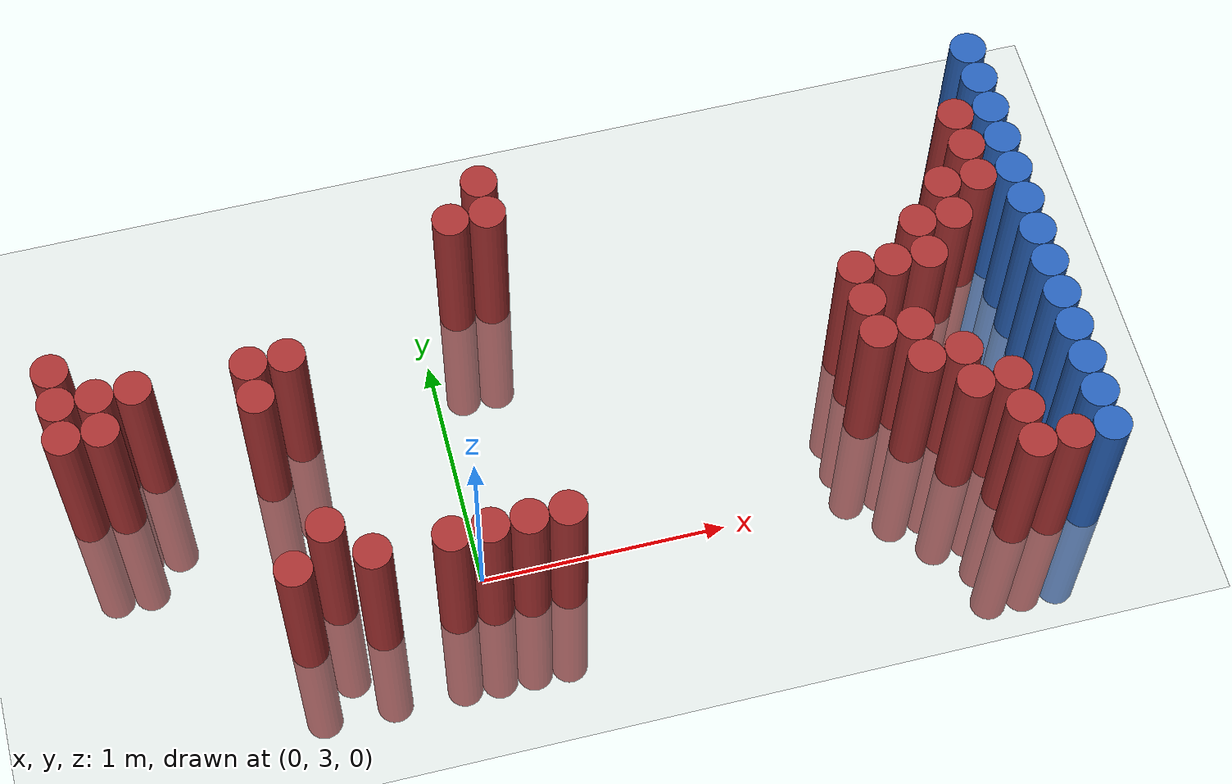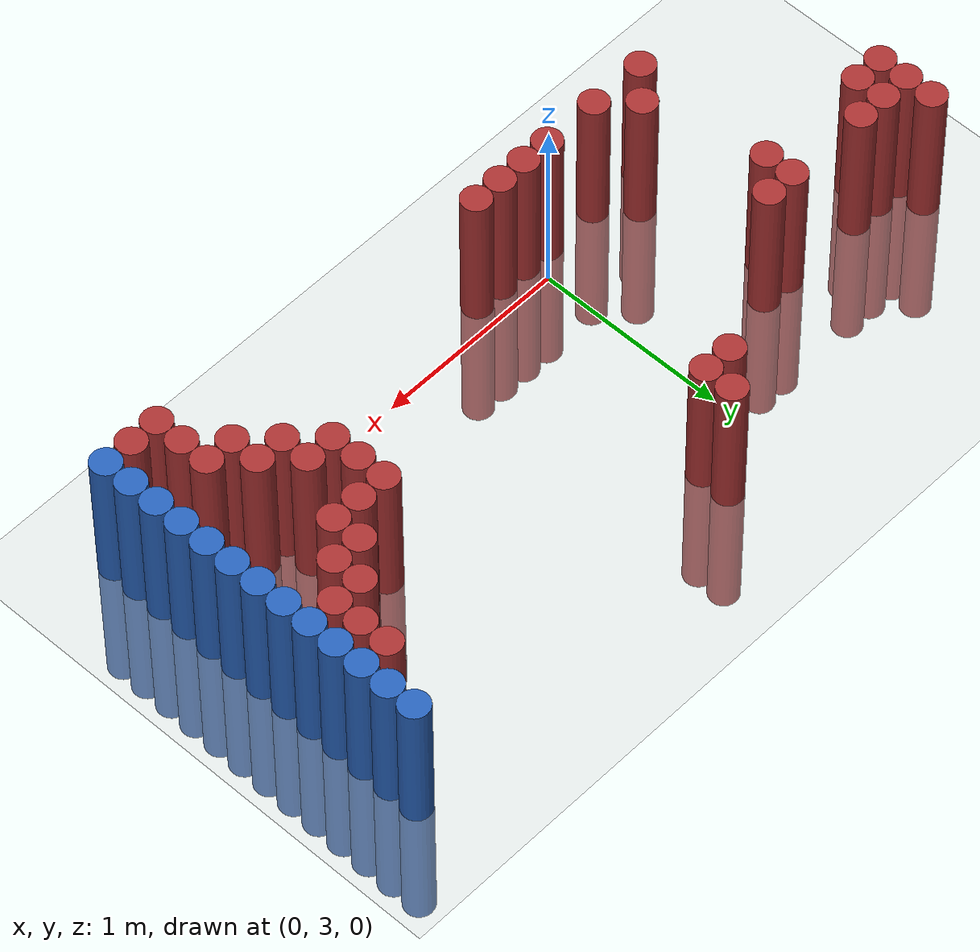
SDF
<sdf version="1.6">
 <world name="default">
  <model name="ground_plane">
   <static>1</static>
   <link name="link">
    <collision name="collision">
     <geometry><plane><normal>0 0 1</normal><size>100 100</size></plane></geometry>
     <surface><friction><ode><mu>100</mu><mu2>50</mu2></ode></friction></surface>
    </collision>
    <visual name="visual">
     <cast_shadows>0</cast_shadows>
     <geometry><plane><normal>0 0 1</normal><size>100 100</size></plane></geometry>
     <material>
      <script><uri>file://media/materials/scripts/gazebo.material</uri><name>Gazebo/Grey</name></script>
     </material>
    </visual>
   </link>
  </model>
  <model name="unit_cylinder_152">
   <static>1</static>
   <pose>-1.475000 3.625000 0.000000 0.000000 0.000000 0.000000</pose>
   <link name="link">
    <inertial>
     <mass>1</mass>
     <inertia><ixx>0.145833</ixx><ixy>0</ixy><ixz>0</ixz><iyy>0.145833</iyy><iyz>0</iyz><izz>0.125</izz></inertia>
    </inertial>
    <collision name="collision">
     <geometry><cylinder><radius>0.075000</radius><length>1.5</length></cylinder></geometry>
    </collision>
    <visual name="visual">
     <geometry><cylinder><radius>0.075000</radius><length>1.5</length></cylinder></geometry>
     <material>
      <ambient>0.648000 0.192000 0.192000 1</ambient>
      <diffuse>0.648000 0.192000 0.192000 1</diffuse>
     </material>
     <material>
      <script><name>Gazebo/Grey</name><uri>file://media/materials/scripts/gazebo.material</uri></script>
     </material>
    </visual>
   </link>
  </model>
  <model name="unit_cylinder_153">
   <static>1</static>
   <pose>-1.475000 3.775000 0.000000 0.000000 0.000000 0.000000</pose>
   <link name="link">
    <inertial>
     <mass>1</mass>
     <inertia><ixx>0.145833</ixx><ixy>0</ixy><ixz>0</ixz><iyy>0.145833</iyy><iyz>0</iyz><izz>0.125</izz></inertia>
    </inertial>
    <collision name="collision">
     <geometry><cylinder><radius>0.075000</radius><length>1.5</length></cylinder></geometry>
    </collision>
    <visual name="visual">
     <geometry><cylinder><radius>0.075000</radius><length>1.5</length></cylinder></geometry>
     <material>
      <ambient>0.648000 0.192000 0.192000 1</ambient>
      <diffuse>0.648000 0.192000 0.192000 1</diffuse>
     </material>
     <material>
      <script><name>Gazebo/Grey</name><uri>file://media/materials/scripts/gazebo.material</uri></script>
     </material>
    </visual>
   </link>
  </model>
  <model name="unit_cylinder_154">
   <static>1</static>
   <pose>-1.475000 3.925000 0.000000 0.000000 0.000000 0.000000</pose>
   <link name="link">
    <inertial>
     <mass>1</mass>
     <inertia><ixx>0.145833</ixx><ixy>0</ixy><ixz>0</ixz><iyy>0.145833</iyy><iyz>0</iyz><izz>0.125</izz></inertia>
    </inertial>
    <collision name="collision">
     <geometry><cylinder><radius>0.075000</radius><length>1.5</length></cylinder></geometry>
    </collision>
    <visual name="visual">
     <geometry><cylinder><radius>0.075000</radius><length>1.5</length></cylinder></geometry>
     <material>
      <ambient>0.648000 0.192000 0.192000 1</ambient>
      <diffuse>0.648000 0.192000 0.192000 1</diffuse>
     </material>
     <material>
      <script><name>Gazebo/Grey</name><uri>file://media/materials/scripts/gazebo.material</uri></script>
     </material>
    </visual>
   </link>
  </model>
  <model name="unit_cylinder_157">
   <static>1</static>
   <pose>-1.325000 3.625000 0.000000 0.000000 0.000000 0.000000</pose>
   <link name="link">
    <inertial>
     <mass>1</mass>
     <inertia><ixx>0.145833</ixx><ixy>0</ixy><ixz>0</ixz><iyy>0.145833</iyy><iyz>0</iyz><izz>0.125</izz></inertia>
    </inertial>
    <collision name="collision">
     <geometry><cylinder><radius>0.075000</radius><length>1.5</length></cylinder></geometry>
    </collision>
    <visual name="visual">
     <geometry><cylinder><radius>0.075000</radius><length>1.5</length></cylinder></geometry>
     <material>
      <ambient>0.648000 0.192000 0.192000 1</ambient>
      <diffuse>0.648000 0.192000 0.192000 1</diffuse>
     </material>
     <material>
      <script><name>Gazebo/Grey</name><uri>file://media/materials/scripts/gazebo.material</uri></script>
     </material>
    </visual>
   </link>
  </model>
  <model name="unit_cylinder_158">
   <static>1</static>
   <pose>-1.325000 3.775000 0.000000 0.000000 0.000000 0.000000</pose>
   <link name="link">
    <inertial>
     <mass>1</mass>
     <inertia><ixx>0.145833</ixx><ixy>0</ixy><ixz>0</ixz><iyy>0.145833</iyy><iyz>0</iyz><izz>0.125</izz></inertia>
    </inertial>
    <collision name="collision">
     <geometry><cylinder><radius>0.075000</radius><length>1.5</length></cylinder></geometry>
    </collision>
    <visual name="visual">
     <geometry><cylinder><radius>0.075000</radius><length>1.5</length></cylinder></geometry>
     <material>
      <ambient>0.648000 0.192000 0.192000 1</ambient>
      <diffuse>0.648000 0.192000 0.192000 1</diffuse>
     </material>
     <material>
      <script><name>Gazebo/Grey</name><uri>file://media/materials/scripts/gazebo.material</uri></script>
     </material>
    </visual>
   </link>
  </model>
  <model name="unit_cylinder_164">
   <static>1</static>
   <pose>-1.175000 3.775000 0.000000 0.000000 0.000000 0.000000</pose>
   <link name="link">
    <inertial>
     <mass>1</mass>
     <inertia><ixx>0.145833</ixx><ixy>0</ixy><ixz>0</ixz><iyy>0.145833</iyy><iyz>0</iyz><izz>0.125</izz></inertia>
    </inertial>
    <collision name="collision">
     <geometry><cylinder><radius>0.075000</radius><length>1.5</length></cylinder></geometry>
    </collision>
    <visual name="visual">
     <geometry><cylinder><radius>0.075000</radius><length>1.5</length></cylinder></geometry>
     <material>
      <ambient>0.648000 0.192000 0.192000 1</ambient>
      <diffuse>0.648000 0.192000 0.192000 1</diffuse>
     </material>
     <material>
      <script><name>Gazebo/Grey</name><uri>file://media/materials/scripts/gazebo.material</uri></script>
     </material>
    </visual>
   </link>
  </model>
  <model name="unit_cylinder_172">
   <static>1</static>
   <pose>-0.725000 2.875000 0.000000 0.000000 0.000000 0.000000</pose>
   <link name="link">
    <inertial>
     <mass>1</mass>
     <inertia><ixx>0.145833</ixx><ixy>0</ixy><ixz>0</ixz><iyy>0.145833</iyy><iyz>0</iyz><izz>0.125</izz></inertia>
    </inertial>
    <collision name="collision">
     <geometry><cylinder><radius>0.075000</radius><length>1.5</length></cylinder></geometry>
    </collision>
    <visual name="visual">
     <geometry><cylinder><radius>0.075000</radius><length>1.5</length></cylinder></geometry>
     <material>
      <ambient>0.648000 0.192000 0.192000 1</ambient>
      <diffuse>0.648000 0.192000 0.192000 1</diffuse>
     </material>
     <material>
      <script><name>Gazebo/Grey</name><uri>file://media/materials/scripts/gazebo.material</uri></script>
     </material>
    </visual>
   </link>
  </model>
  <model name="unit_cylinder_173">
   <static>1</static>
   <pose>-0.725000 3.625000 0.000000 0.000000 0.000000 0.000000</pose>
   <link name="link">
    <inertial>
     <mass>1</mass>
     <inertia><ixx>0.145833</ixx><ixy>0</ixy><ixz>0</ixz><iyy>0.145833</iyy><iyz>0</iyz><izz>0.125</izz></inertia>
    </inertial>
    <collision name="collision">
     <geometry><cylinder><radius>0.075000</radius><length>1.5</length></cylinder></geometry>
    </collision>
    <visual name="visual">
     <geometry><cylinder><radius>0.075000</radius><length>1.5</length></cylinder></geometry>
     <material>
      <ambient>0.648000 0.192000 0.192000 1</ambient>
      <diffuse>0.648000 0.192000 0.192000 1</diffuse>
     </material>
     <material>
      <script><name>Gazebo/Grey</name><uri>file://media/materials/scripts/gazebo.material</uri></script>
     </material>
    </visual>
   </link>
  </model>
  <model name="unit_cylinder_174">
   <static>1</static>
   <pose>-0.725000 3.775000 0.000000 0.000000 0.000000 0.000000</pose>
   <link name="link">
    <inertial>
     <mass>1</mass>
     <inertia><ixx>0.145833</ixx><ixy>0</ixy><ixz>0</ixz><iyy>0.145833</iyy><iyz>0</iyz><izz>0.125</izz></inertia>
    </inertial>
    <collision name="collision">
     <geometry><cylinder><radius>0.075000</radius><length>1.5</length></cylinder></geometry>
    </collision>
    <visual name="visual">
     <geometry><cylinder><radius>0.075000</radius><length>1.5</length></cylinder></geometry>
     <material>
      <ambient>0.648000 0.192000 0.192000 1</ambient>
      <diffuse>0.648000 0.192000 0.192000 1</diffuse>
     </material>
     <material>
      <script><name>Gazebo/Grey</name><uri>file://media/materials/scripts/gazebo.material</uri></script>
     </material>
    </visual>
   </link>
  </model>
  <model name="unit_cylinder_179">
   <static>1</static>
   <pose>-0.575000 3.025000 0.000000 0.000000 0.000000 0.000000</pose>
   <link name="link">
    <inertial>
     <mass>1</mass>
     <inertia><ixx>0.145833</ixx><ixy>0</ixy><ixz>0</ixz><iyy>0.145833</iyy><iyz>0</iyz><izz>0.125</izz></inertia>
    </inertial>
    <collision name="collision">
     <geometry><cylinder><radius>0.075000</radius><length>1.5</length></cylinder></geometry>
    </collision>
    <visual name="visual">
     <geometry><cylinder><radius>0.075000</radius><length>1.5</length></cylinder></geometry>
     <material>
      <ambient>0.648000 0.192000 0.192000 1</ambient>
      <diffuse>0.648000 0.192000 0.192000 1</diffuse>
     </material>
     <material>
      <script><name>Gazebo/Grey</name><uri>file://media/materials/scripts/gazebo.material</uri></script>
     </material>
    </visual>
   </link>
  </model>
  <model name="unit_cylinder_180">
   <static>1</static>
   <pose>-0.575000 3.775000 0.000000 0.000000 0.000000 0.000000</pose>
   <link name="link">
    <inertial>
     <mass>1</mass>
     <inertia><ixx>0.145833</ixx><ixy>0</ixy><ixz>0</ixz><iyy>0.145833</iyy><iyz>0</iyz><izz>0.125</izz></inertia>
    </inertial>
    <collision name="collision">
     <geometry><cylinder><radius>0.075000</radius><length>1.5</length></cylinder></geometry>
    </collision>
    <visual name="visual">
     <geometry><cylinder><radius>0.075000</radius><length>1.5</length></cylinder></geometry>
     <material>
      <ambient>0.648000 0.192000 0.192000 1</ambient>
      <diffuse>0.648000 0.192000 0.192000 1</diffuse>
     </material>
     <material>
      <script><name>Gazebo/Grey</name><uri>file://media/materials/scripts/gazebo.material</uri></script>
     </material>
    </visual>
   </link>
  </model>
  <model name="unit_cylinder_184">
   <static>1</static>
   <pose>-0.425000 2.875000 0.000000 0.000000 0.000000 0.000000</pose>
   <link name="link">
    <inertial>
     <mass>1</mass>
     <inertia><ixx>0.145833</ixx><ixy>0</ixy><ixz>0</ixz><iyy>0.145833</iyy><iyz>0</iyz><izz>0.125</izz></inertia>
    </inertial>
    <collision name="collision">
     <geometry><cylinder><radius>0.075000</radius><length>1.5</length></cylinder></geometry>
    </collision>
    <visual name="visual">
     <geometry><cylinder><radius>0.075000</radius><length>1.5</length></cylinder></geometry>
     <material>
      <ambient>0.648000 0.192000 0.192000 1</ambient>
      <diffuse>0.648000 0.192000 0.192000 1</diffuse>
     </material>
     <material>
      <script><name>Gazebo/Grey</name><uri>file://media/materials/scripts/gazebo.material</uri></script>
     </material>
    </visual>
   </link>
  </model>
  <model name="unit_cylinder_186">
   <static>1</static>
   <pose>-0.125000 2.875000 0.000000 0.000000 0.000000 0.000000</pose>
   <link name="link">
    <inertial>
     <mass>1</mass>
     <inertia><ixx>0.145833</ixx><ixy>0</ixy><ixz>0</ixz><iyy>0.145833</iyy><iyz>0</iyz><izz>0.125</izz></inertia>
    </inertial>
    <collision name="collision">
     <geometry><cylinder><radius>0.075000</radius><length>1.5</length></cylinder></geometry>
    </collision>
    <visual name="visual">
     <geometry><cylinder><radius>0.075000</radius><length>1.5</length></cylinder></geometry>
     <material>
      <ambient>0.648000 0.192000 0.192000 1</ambient>
      <diffuse>0.648000 0.192000 0.192000 1</diffuse>
     </material>
     <material>
      <script><name>Gazebo/Grey</name><uri>file://media/materials/scripts/gazebo.material</uri></script>
     </material>
    </visual>
   </link>
  </model>
  <model name="unit_cylinder_189">
   <static>1</static>
   <pose>0.025000 2.875000 0.000000 0.000000 0.000000 0.000000</pose>
   <link name="link">
    <inertial>
     <mass>1</mass>
     <inertia><ixx>0.145833</ixx><ixy>0</ixy><ixz>0</ixz><iyy>0.145833</iyy><iyz>0</iyz><izz>0.125</izz></inertia>
    </inertial>
    <collision name="collision">
     <geometry><cylinder><radius>0.075000</radius><length>1.5</length></cylinder></geometry>
    </collision>
    <visual name="visual">
     <geometry><cylinder><radius>0.075000</radius><length>1.5</length></cylinder></geometry>
     <material>
      <ambient>0.648000 0.192000 0.192000 1</ambient>
      <diffuse>0.648000 0.192000 0.192000 1</diffuse>
     </material>
     <material>
      <script><name>Gazebo/Grey</name><uri>file://media/materials/scripts/gazebo.material</uri></script>
     </material>
    </visual>
   </link>
  </model>
  <model name="unit_cylinder_193">
   <static>1</static>
   <pose>0.175000 2.875000 0.000000 0.000000 0.000000 0.000000</pose>
   <link name="link">
    <inertial>
     <mass>1</mass>
     <inertia><ixx>0.145833</ixx><ixy>0</ixy><ixz>0</ixz><iyy>0.145833</iyy><iyz>0</iyz><izz>0.125</izz></inertia>
    </inertial>
    <collision name="collision">
     <geometry><cylinder><radius>0.075000</radius><length>1.5</length></cylinder></geometry>
    </collision>
    <visual name="visual">
     <geometry><cylinder><radius>0.075000</radius><length>1.5</length></cylinder></geometry>
     <material>
      <ambient>0.648000 0.192000 0.192000 1</ambient>
      <diffuse>0.648000 0.192000 0.192000 1</diffuse>
     </material>
     <material>
      <script><name>Gazebo/Grey</name><uri>file://media/materials/scripts/gazebo.material</uri></script>
     </material>
    </visual>
   </link>
  </model>
  <model name="unit_cylinder_194">
   <static>1</static>
   <pose>0.175000 4.225000 0.000000 0.000000 0.000000 0.000000</pose>
   <link name="link">
    <inertial>
     <mass>1</mass>
     <inertia><ixx>0.145833</ixx><ixy>0</ixy><ixz>0</ixz><iyy>0.145833</iyy><iyz>0</iyz><izz>0.125</izz></inertia>
    </inertial>
    <collision name="collision">
     <geometry><cylinder><radius>0.075000</radius><length>1.5</length></cylinder></geometry>
    </collision>
    <visual name="visual">
     <geometry><cylinder><radius>0.075000</radius><length>1.5</length></cylinder></geometry>
     <material>
      <ambient>0.648000 0.192000 0.192000 1</ambient>
      <diffuse>0.648000 0.192000 0.192000 1</diffuse>
     </material>
     <material>
      <script><name>Gazebo/Grey</name><uri>file://media/materials/scripts/gazebo.material</uri></script>
     </material>
    </visual>
   </link>
  </model>
  <model name="unit_cylinder_199">
   <static>1</static>
   <pose>0.325000 2.875000 0.000000 0.000000 0.000000 0.000000</pose>
   <link name="link">
    <inertial>
     <mass>1</mass>
     <inertia><ixx>0.145833</ixx><ixy>0</ixy><ixz>0</ixz><iyy>0.145833</iyy><iyz>0</iyz><izz>0.125</izz></inertia>
    </inertial>
    <collision name="collision">
     <geometry><cylinder><radius>0.075000</radius><length>1.5</length></cylinder></geometry>
    </collision>
    <visual name="visual">
     <geometry><cylinder><radius>0.075000</radius><length>1.5</length></cylinder></geometry>
     <material>
      <ambient>0.648000 0.192000 0.192000 1</ambient>
      <diffuse>0.648000 0.192000 0.192000 1</diffuse>
     </material>
     <material>
      <script><name>Gazebo/Grey</name><uri>file://media/materials/scripts/gazebo.material</uri></script>
     </material>
    </visual>
   </link>
  </model>
  <model name="unit_cylinder_200">
   <static>1</static>
   <pose>0.325000 4.225000 0.000000 0.000000 0.000000 0.000000</pose>
   <link name="link">
    <inertial>
     <mass>1</mass>
     <inertia><ixx>0.145833</ixx><ixy>0</ixy><ixz>0</ixz><iyy>0.145833</iyy><iyz>0</iyz><izz>0.125</izz></inertia>
    </inertial>
    <collision name="collision">
     <geometry><cylinder><radius>0.075000</radius><length>1.5</length></cylinder></geometry>
    </collision>
    <visual name="visual">
     <geometry><cylinder><radius>0.075000</radius><length>1.5</length></cylinder></geometry>
     <material>
      <ambient>0.648000 0.192000 0.192000 1</ambient>
      <diffuse>0.648000 0.192000 0.192000 1</diffuse>
     </material>
     <material>
      <script><name>Gazebo/Grey</name><uri>file://media/materials/scripts/gazebo.material</uri></script>
     </material>
    </visual>
   </link>
  </model>
  <model name="unit_cylinder_201">
   <static>1</static>
   <pose>0.325000 4.375000 0.000000 0.000000 0.000000 0.000000</pose>
   <link name="link">
    <inertial>
     <mass>1</mass>
     <inertia><ixx>0.145833</ixx><ixy>0</ixy><ixz>0</ixz><iyy>0.145833</iyy><iyz>0</iyz><izz>0.125</izz></inertia>
    </inertial>
    <collision name="collision">
     <geometry><cylinder><radius>0.075000</radius><length>1.5</length></cylinder></geometry>
    </collision>
    <visual name="visual">
     <geometry><cylinder><radius>0.075000</radius><length>1.5</length></cylinder></geometry>
     <material>
      <ambient>0.648000 0.192000 0.192000 1</ambient>
      <diffuse>0.648000 0.192000 0.192000 1</diffuse>
     </material>
     <material>
      <script><name>Gazebo/Grey</name><uri>file://media/materials/scripts/gazebo.material</uri></script>
     </material>
    </visual>
   </link>
  </model>
  <model name="unit_cylinder_203">
   <static>1</static>
   <pose>1.675000 3.325000 0.000000 0.000000 0.000000 0.000000</pose>
   <link name="link">
    <inertial>
     <mass>1</mass>
     <inertia><ixx>0.145833</ixx><ixy>0</ixy><ixz>0</ixz><iyy>0.145833</iyy><iyz>0</iyz><izz>0.125</izz></inertia>
    </inertial>
    <collision name="collision">
     <geometry><cylinder><radius>0.075000</radius><length>1.5</length></cylinder></geometry>
    </collision>
    <visual name="visual">
     <geometry><cylinder><radius>0.075000</radius><length>1.5</length></cylinder></geometry>
     <material>
      <ambient>0.648000 0.192000 0.192000 1</ambient>
      <diffuse>0.648000 0.192000 0.192000 1</diffuse>
     </material>
     <material>
      <script><name>Gazebo/Grey</name><uri>file://media/materials/scripts/gazebo.material</uri></script>
     </material>
    </visual>
   </link>
  </model>
  <model name="unit_cylinder_204">
   <static>1</static>
   <pose>1.675000 3.475000 0.000000 0.000000 0.000000 0.000000</pose>
   <link name="link">
    <inertial>
     <mass>1</mass>
     <inertia><ixx>0.145833</ixx><ixy>0</ixy><ixz>0</ixz><iyy>0.145833</iyy><iyz>0</iyz><izz>0.125</izz></inertia>
    </inertial>
    <collision name="collision">
     <geometry><cylinder><radius>0.075000</radius><length>1.5</length></cylinder></geometry>
    </collision>
    <visual name="visual">
     <geometry><cylinder><radius>0.075000</radius><length>1.5</length></cylinder></geometry>
     <material>
      <ambient>0.648000 0.192000 0.192000 1</ambient>
      <diffuse>0.648000 0.192000 0.192000 1</diffuse>
     </material>
     <material>
      <script><name>Gazebo/Grey</name><uri>file://media/materials/scripts/gazebo.material</uri></script>
     </material>
    </visual>
   </link>
  </model>
  <model name="unit_cylinder_205">
   <static>1</static>
   <pose>1.675000 3.625000 0.000000 0.000000 0.000000 0.000000</pose>
   <link name="link">
    <inertial>
     <mass>1</mass>
     <inertia><ixx>0.145833</ixx><ixy>0</ixy><ixz>0</ixz><iyy>0.145833</iyy><iyz>0</iyz><izz>0.125</izz></inertia>
    </inertial>
    <collision name="collision">
     <geometry><cylinder><radius>0.075000</radius><length>1.5</length></cylinder></geometry>
    </collision>
    <visual name="visual">
     <geometry><cylinder><radius>0.075000</radius><length>1.5</length></cylinder></geometry>
     <material>
      <ambient>0.648000 0.192000 0.192000 1</ambient>
      <diffuse>0.648000 0.192000 0.192000 1</diffuse>
     </material>
     <material>
      <script><name>Gazebo/Grey</name><uri>file://media/materials/scripts/gazebo.material</uri></script>
     </material>
    </visual>
   </link>
  </model>
  <model name="unit_cylinder_206">
   <static>1</static>
   <pose>1.825000 3.175000 0.000000 0.000000 0.000000 0.000000</pose>
   <link name="link">
    <inertial>
     <mass>1</mass>
     <inertia><ixx>0.145833</ixx><ixy>0</ixy><ixz>0</ixz><iyy>0.145833</iyy><iyz>0</iyz><izz>0.125</izz></inertia>
    </inertial>
    <collision name="collision">
     <geometry><cylinder><radius>0.075000</radius><length>1.5</length></cylinder></geometry>
    </collision>
    <visual name="visual">
     <geometry><cylinder><radius>0.075000</radius><length>1.5</length></cylinder></geometry>
     <material>
      <ambient>0.648000 0.192000 0.192000 1</ambient>
      <diffuse>0.648000 0.192000 0.192000 1</diffuse>
     </material>
     <material>
      <script><name>Gazebo/Grey</name><uri>file://media/materials/scripts/gazebo.material</uri></script>
     </material>
    </visual>
   </link>
  </model>
  <model name="unit_cylinder_207">
   <static>1</static>
   <pose>1.825000 3.325000 0.000000 0.000000 0.000000 0.000000</pose>
   <link name="link">
    <inertial>
     <mass>1</mass>
     <inertia><ixx>0.145833</ixx><ixy>0</ixy><ixz>0</ixz><iyy>0.145833</iyy><iyz>0</iyz><izz>0.125</izz></inertia>
    </inertial>
    <collision name="collision">
     <geometry><cylinder><radius>0.075000</radius><length>1.5</length></cylinder></geometry>
    </collision>
    <visual name="visual">
     <geometry><cylinder><radius>0.075000</radius><length>1.5</length></cylinder></geometry>
     <material>
      <ambient>0.648000 0.192000 0.192000 1</ambient>
      <diffuse>0.648000 0.192000 0.192000 1</diffuse>
     </material>
     <material>
      <script><name>Gazebo/Grey</name><uri>file://media/materials/scripts/gazebo.material</uri></script>
     </material>
    </visual>
   </link>
  </model>
  <model name="unit_cylinder_208">
   <static>1</static>
   <pose>1.825000 3.625000 0.000000 0.000000 0.000000 0.000000</pose>
   <link name="link">
    <inertial>
     <mass>1</mass>
     <inertia><ixx>0.145833</ixx><ixy>0</ixy><ixz>0</ixz><iyy>0.145833</iyy><iyz>0</iyz><izz>0.125</izz></inertia>
    </inertial>
    <collision name="collision">
     <geometry><cylinder><radius>0.075000</radius><length>1.5</length></cylinder></geometry>
    </collision>
    <visual name="visual">
     <geometry><cylinder><radius>0.075000</radius><length>1.5</length></cylinder></geometry>
     <material>
      <ambient>0.648000 0.192000 0.192000 1</ambient>
      <diffuse>0.648000 0.192000 0.192000 1</diffuse>
     </material>
     <material>
      <script><name>Gazebo/Grey</name><uri>file://media/materials/scripts/gazebo.material</uri></script>
     </material>
    </visual>
   </link>
  </model>
  <model name="unit_cylinder_209">
   <static>1</static>
   <pose>1.975000 3.025000 0.000000 0.000000 0.000000 0.000000</pose>
   <link name="link">
    <inertial>
     <mass>1</mass>
     <inertia><ixx>0.145833</ixx><ixy>0</ixy><ixz>0</ixz><iyy>0.145833</iyy><iyz>0</iyz><izz>0.125</izz></inertia>
    </inertial>
    <collision name="collision">
     <geometry><cylinder><radius>0.075000</radius><length>1.5</length></cylinder></geometry>
    </collision>
    <visual name="visual">
     <geometry><cylinder><radius>0.075000</radius><length>1.5</length></cylinder></geometry>
     <material>
      <ambient>0.648000 0.192000 0.192000 1</ambient>
      <diffuse>0.648000 0.192000 0.192000 1</diffuse>
     </material>
     <material>
      <script><name>Gazebo/Grey</name><uri>file://media/materials/scripts/gazebo.material</uri></script>
     </material>
    </visual>
   </link>
  </model>
  <model name="unit_cylinder_210">
   <static>1</static>
   <pose>1.975000 3.175000 0.000000 0.000000 0.000000 0.000000</pose>
   <link name="link">
    <inertial>
     <mass>1</mass>
     <inertia><ixx>0.145833</ixx><ixy>0</ixy><ixz>0</ixz><iyy>0.145833</iyy><iyz>0</iyz><izz>0.125</izz></inertia>
    </inertial>
    <collision name="collision">
     <geometry><cylinder><radius>0.075000</radius><length>1.5</length></cylinder></geometry>
    </collision>
    <visual name="visual">
     <geometry><cylinder><radius>0.075000</radius><length>1.5</length></cylinder></geometry>
     <material>
      <ambient>0.648000 0.192000 0.192000 1</ambient>
      <diffuse>0.648000 0.192000 0.192000 1</diffuse>
     </material>
     <material>
      <script><name>Gazebo/Grey</name><uri>file://media/materials/scripts/gazebo.material</uri></script>
     </material>
    </visual>
   </link>
  </model>
  <model name="unit_cylinder_211">
   <static>1</static>
   <pose>1.975000 3.625000 0.000000 0.000000 0.000000 0.000000</pose>
   <link name="link">
    <inertial>
     <mass>1</mass>
     <inertia><ixx>0.145833</ixx><ixy>0</ixy><ixz>0</ixz><iyy>0.145833</iyy><iyz>0</iyz><izz>0.125</izz></inertia>
    </inertial>
    <collision name="collision">
     <geometry><cylinder><radius>0.075000</radius><length>1.5</length></cylinder></geometry>
    </collision>
    <visual name="visual">
     <geometry><cylinder><radius>0.075000</radius><length>1.5</length></cylinder></geometry>
     <material>
      <ambient>0.648000 0.192000 0.192000 1</ambient>
      <diffuse>0.648000 0.192000 0.192000 1</diffuse>
     </material>
     <material>
      <script><name>Gazebo/Grey</name><uri>file://media/materials/scripts/gazebo.material</uri></script>
     </material>
    </visual>
   </link>
  </model>
  <model name="unit_cylinder_212">
   <static>1</static>
   <pose>1.975000 3.775000 0.000000 0.000000 0.000000 0.000000</pose>
   <link name="link">
    <inertial>
     <mass>1</mass>
     <inertia><ixx>0.145833</ixx><ixy>0</ixy><ixz>0</ixz><iyy>0.145833</iyy><iyz>0</iyz><izz>0.125</izz></inertia>
    </inertial>
    <collision name="collision">
     <geometry><cylinder><radius>0.075000</radius><length>1.5</length></cylinder></geometry>
    </collision>
    <visual name="visual">
     <geometry><cylinder><radius>0.075000</radius><length>1.5</length></cylinder></geometry>
     <material>
      <ambient>0.648000 0.192000 0.192000 1</ambient>
      <diffuse>0.648000 0.192000 0.192000 1</diffuse>
     </material>
     <material>
      <script><name>Gazebo/Grey</name><uri>file://media/materials/scripts/gazebo.material</uri></script>
     </material>
    </visual>
   </link>
  </model>
  <model name="unit_cylinder_213">
   <static>1</static>
   <pose>2.125000 2.725000 0.000000 0.000000 0.000000 0.000000</pose>
   <link name="link">
    <inertial>
     <mass>1</mass>
     <inertia><ixx>0.145833</ixx><ixy>0</ixy><ixz>0</ixz><iyy>0.145833</iyy><iyz>0</iyz><izz>0.125</izz></inertia>
    </inertial>
    <collision name="collision">
     <geometry><cylinder><radius>0.075000</radius><length>1.5</length></cylinder></geometry>
    </collision>
    <visual name="visual">
     <geometry><cylinder><radius>0.075000</radius><length>1.5</length></cylinder></geometry>
     <material>
      <ambient>0.648000 0.192000 0.192000 1</ambient>
      <diffuse>0.648000 0.192000 0.192000 1</diffuse>
     </material>
     <material>
      <script><name>Gazebo/Grey</name><uri>file://media/materials/scripts/gazebo.material</uri></script>
     </material>
    </visual>
   </link>
  </model>
  <model name="unit_cylinder_214">
   <static>1</static>
   <pose>2.125000 2.875000 0.000000 0.000000 0.000000 0.000000</pose>
   <link name="link">
    <inertial>
     <mass>1</mass>
     <inertia><ixx>0.145833</ixx><ixy>0</ixy><ixz>0</ixz><iyy>0.145833</iyy><iyz>0</iyz><izz>0.125</izz></inertia>
    </inertial>
    <collision name="collision">
     <geometry><cylinder><radius>0.075000</radius><length>1.5</length></cylinder></geometry>
    </collision>
    <visual name="visual">
     <geometry><cylinder><radius>0.075000</radius><length>1.5</length></cylinder></geometry>
     <material>
      <ambient>0.648000 0.192000 0.192000 1</ambient>
      <diffuse>0.648000 0.192000 0.192000 1</diffuse>
     </material>
     <material>
      <script><name>Gazebo/Grey</name><uri>file://media/materials/scripts/gazebo.material</uri></script>
     </material>
    </visual>
   </link>
  </model>
  <model name="unit_cylinder_215">
   <static>1</static>
   <pose>2.125000 3.025000 0.000000 0.000000 0.000000 0.000000</pose>
   <link name="link">
    <inertial>
     <mass>1</mass>
     <inertia><ixx>0.145833</ixx><ixy>0</ixy><ixz>0</ixz><iyy>0.145833</iyy><iyz>0</iyz><izz>0.125</izz></inertia>
    </inertial>
    <collision name="collision">
     <geometry><cylinder><radius>0.075000</radius><length>1.5</length></cylinder></geometry>
    </collision>
    <visual name="visual">
     <geometry><cylinder><radius>0.075000</radius><length>1.5</length></cylinder></geometry>
     <material>
      <ambient>0.648000 0.192000 0.192000 1</ambient>
      <diffuse>0.648000 0.192000 0.192000 1</diffuse>
     </material>
     <material>
      <script><name>Gazebo/Grey</name><uri>file://media/materials/scripts/gazebo.material</uri></script>
     </material>
    </visual>
   </link>
  </model>
  <model name="unit_cylinder_216">
   <static>1</static>
   <pose>2.125000 3.775000 0.000000 0.000000 0.000000 0.000000</pose>
   <link name="link">
    <inertial>
     <mass>1</mass>
     <inertia><ixx>0.145833</ixx><ixy>0</ixy><ixz>0</ixz><iyy>0.145833</iyy><iyz>0</iyz><izz>0.125</izz></inertia>
    </inertial>
    <collision name="collision">
     <geometry><cylinder><radius>0.075000</radius><length>1.5</length></cylinder></geometry>
    </collision>
    <visual name="visual">
     <geometry><cylinder><radius>0.075000</radius><length>1.5</length></cylinder></geometry>
     <material>
      <ambient>0.648000 0.192000 0.192000 1</ambient>
      <diffuse>0.648000 0.192000 0.192000 1</diffuse>
     </material>
     <material>
      <script><name>Gazebo/Grey</name><uri>file://media/materials/scripts/gazebo.material</uri></script>
     </material>
    </visual>
   </link>
  </model>
  <model name="unit_cylinder_217">
   <static>1</static>
   <pose>2.125000 3.925000 0.000000 0.000000 0.000000 0.000000</pose>
   <link name="link">
    <inertial>
     <mass>1</mass>
     <inertia><ixx>0.145833</ixx><ixy>0</ixy><ixz>0</ixz><iyy>0.145833</iyy><iyz>0</iyz><izz>0.125</izz></inertia>
    </inertial>
    <collision name="collision">
     <geometry><cylinder><radius>0.075000</radius><length>1.5</length></cylinder></geometry>
    </collision>
    <visual name="visual">
     <geometry><cylinder><radius>0.075000</radius><length>1.5</length></cylinder></geometry>
     <material>
      <ambient>0.648000 0.192000 0.192000 1</ambient>
      <diffuse>0.648000 0.192000 0.192000 1</diffuse>
     </material>
     <material>
      <script><name>Gazebo/Grey</name><uri>file://media/materials/scripts/gazebo.material</uri></script>
     </material>
    </visual>
   </link>
  </model>
  <model name="unit_cylinder_221">
   <static>1</static>
   <pose>2.275000 2.725000 0.000000 0.000000 0.000000 0.000000</pose>
   <link name="link">
    <inertial>
     <mass>1</mass>
     <inertia><ixx>0.145833</ixx><ixy>0</ixy><ixz>0</ixz><iyy>0.145833</iyy><iyz>0</iyz><izz>0.125</izz></inertia>
    </inertial>
    <collision name="collision">
     <geometry><cylinder><radius>0.075000</radius><length>1.5</length></cylinder></geometry>
    </collision>
    <visual name="visual">
     <geometry><cylinder><radius>0.075000</radius><length>1.5</length></cylinder></geometry>
     <material>
      <ambient>0.648000 0.192000 0.192000 1</ambient>
      <diffuse>0.648000 0.192000 0.192000 1</diffuse>
     </material>
     <material>
      <script><name>Gazebo/Grey</name><uri>file://media/materials/scripts/gazebo.material</uri></script>
     </material>
    </visual>
   </link>
  </model>
  <model name="unit_cylinder_222">
   <static>1</static>
   <pose>2.275000 3.925000 0.000000 0.000000 0.000000 0.000000</pose>
   <link name="link">
    <inertial>
     <mass>1</mass>
     <inertia><ixx>0.145833</ixx><ixy>0</ixy><ixz>0</ixz><iyy>0.145833</iyy><iyz>0</iyz><izz>0.125</izz></inertia>
    </inertial>
    <collision name="collision">
     <geometry><cylinder><radius>0.075000</radius><length>1.5</length></cylinder></geometry>
    </collision>
    <visual name="visual">
     <geometry><cylinder><radius>0.075000</radius><length>1.5</length></cylinder></geometry>
     <material>
      <ambient>0.648000 0.192000 0.192000 1</ambient>
      <diffuse>0.648000 0.192000 0.192000 1</diffuse>
     </material>
     <material>
      <script><name>Gazebo/Grey</name><uri>file://media/materials/scripts/gazebo.material</uri></script>
     </material>
    </visual>
   </link>
  </model>
  <model name="unit_cylinder_223">
   <static>1</static>
   <pose>2.275000 4.075000 0.000000 0.000000 0.000000 0.000000</pose>
   <link name="link">
    <inertial>
     <mass>1</mass>
     <inertia><ixx>0.145833</ixx><ixy>0</ixy><ixz>0</ixz><iyy>0.145833</iyy><iyz>0</iyz><izz>0.125</izz></inertia>
    </inertial>
    <collision name="collision">
     <geometry><cylinder><radius>0.075000</radius><length>1.5</length></cylinder></geometry>
    </collision>
    <visual name="visual">
     <geometry><cylinder><radius>0.075000</radius><length>1.5</length></cylinder></geometry>
     <material>
      <ambient>0.648000 0.192000 0.192000 1</ambient>
      <diffuse>0.648000 0.192000 0.192000 1</diffuse>
     </material>
     <material>
      <script><name>Gazebo/Grey</name><uri>file://media/materials/scripts/gazebo.material</uri></script>
     </material>
    </visual>
   </link>
  </model>
  <model name="unit_cylinder_224">
   <static>1</static>
   <pose>2.275000 4.225000 0.000000 0.000000 0.000000 0.000000</pose>
   <link name="link">
    <inertial>
     <mass>1</mass>
     <inertia><ixx>0.145833</ixx><ixy>0</ixy><ixz>0</ixz><iyy>0.145833</iyy><iyz>0</iyz><izz>0.125</izz></inertia>
    </inertial>
    <collision name="collision">
     <geometry><cylinder><radius>0.075000</radius><length>1.5</length></cylinder></geometry>
    </collision>
    <visual name="visual">
     <geometry><cylinder><radius>0.075000</radius><length>1.5</length></cylinder></geometry>
     <material>
      <ambient>0.648000 0.192000 0.192000 1</ambient>
      <diffuse>0.648000 0.192000 0.192000 1</diffuse>
     </material>
     <material>
      <script><name>Gazebo/Grey</name><uri>file://media/materials/scripts/gazebo.material</uri></script>
     </material>
    </visual>
   </link>
  </model>
  <model name="unit_cylinder_242">
   <static>1</static>
   <pose>2.425000 2.725000 0.000000 0.000000 0.000000 0.000000</pose>
   <link name="link">
    <inertial>
     <mass>1</mass>
     <inertia><ixx>0.145833</ixx><ixy>0</ixy><ixz>0</ixz><iyy>0.145833</iyy><iyz>0</iyz><izz>0.125</izz></inertia>
    </inertial>
    <collision name="collision">
     <geometry><cylinder><radius>0.075000</radius><length>1.5</length></cylinder></geometry>
    </collision>
    <visual name="visual">
     <geometry><cylinder><radius>0.075000</radius><length>1.5</length></cylinder></geometry>
     <material>
      <ambient>0.152000 0.379000 0.720000 1</ambient>
      <diffuse>0.152000 0.379000 0.720000 1</diffuse>
     </material>
     <material>
      <script><name>Gazebo/Grey</name><uri>file://media/materials/scripts/gazebo.material</uri></script>
     </material>
    </visual>
   </link>
  </model>
  <model name="unit_cylinder_243">
   <static>1</static>
   <pose>2.425000 2.875000 0.000000 0.000000 0.000000 0.000000</pose>
   <link name="link">
    <inertial>
     <mass>1</mass>
     <inertia><ixx>0.145833</ixx><ixy>0</ixy><ixz>0</ixz><iyy>0.145833</iyy><iyz>0</iyz><izz>0.125</izz></inertia>
    </inertial>
    <collision name="collision">
     <geometry><cylinder><radius>0.075000</radius><length>1.5</length></cylinder></geometry>
    </collision>
    <visual name="visual">
     <geometry><cylinder><radius>0.075000</radius><length>1.5</length></cylinder></geometry>
     <material>
      <ambient>0.152000 0.379000 0.720000 1</ambient>
      <diffuse>0.152000 0.379000 0.720000 1</diffuse>
     </material>
     <material>
      <script><name>Gazebo/Grey</name><uri>file://media/materials/scripts/gazebo.material</uri></script>
     </material>
    </visual>
   </link>
  </model>
  <model name="unit_cylinder_244">
   <static>1</static>
   <pose>2.425000 3.025000 0.000000 0.000000 0.000000 0.000000</pose>
   <link name="link">
    <inertial>
     <mass>1</mass>
     <inertia><ixx>0.145833</ixx><ixy>0</ixy><ixz>0</ixz><iyy>0.145833</iyy><iyz>0</iyz><izz>0.125</izz></inertia>
    </inertial>
    <collision name="collision">
     <geometry><cylinder><radius>0.075000</radius><length>1.5</length></cylinder></geometry>
    </collision>
    <visual name="visual">
     <geometry><cylinder><radius>0.075000</radius><length>1.5</length></cylinder></geometry>
     <material>
      <ambient>0.152000 0.379000 0.720000 1</ambient>
      <diffuse>0.152000 0.379000 0.720000 1</diffuse>
     </material>
     <material>
      <script><name>Gazebo/Grey</name><uri>file://media/materials/scripts/gazebo.material</uri></script>
     </material>
    </visual>
   </link>
  </model>
  <model name="unit_cylinder_245">
   <static>1</static>
   <pose>2.425000 3.175000 0.000000 0.000000 0.000000 0.000000</pose>
   <link name="link">
    <inertial>
     <mass>1</mass>
     <inertia><ixx>0.145833</ixx><ixy>0</ixy><ixz>0</ixz><iyy>0.145833</iyy><iyz>0</iyz><izz>0.125</izz></inertia>
    </inertial>
    <collision name="collision">
     <geometry><cylinder><radius>0.075000</radius><length>1.5</length></cylinder></geometry>
    </collision>
    <visual name="visual">
     <geometry><cylinder><radius>0.075000</radius><length>1.5</length></cylinder></geometry>
     <material>
      <ambient>0.152000 0.379000 0.720000 1</ambient>
      <diffuse>0.152000 0.379000 0.720000 1</diffuse>
     </material>
     <material>
      <script><name>Gazebo/Grey</name><uri>file://media/materials/scripts/gazebo.material</uri></script>
     </material>
    </visual>
   </link>
  </model>
  <model name="unit_cylinder_246">
   <static>1</static>
   <pose>2.425000 3.325000 0.000000 0.000000 0.000000 0.000000</pose>
   <link name="link">
    <inertial>
     <mass>1</mass>
     <inertia><ixx>0.145833</ixx><ixy>0</ixy><ixz>0</ixz><iyy>0.145833</iyy><iyz>0</iyz><izz>0.125</izz></inertia>
    </inertial>
    <collision name="collision">
     <geometry><cylinder><radius>0.075000</radius><length>1.5</length></cylinder></geometry>
    </collision>
    <visual name="visual">
     <geometry><cylinder><radius>0.075000</radius><length>1.5</length></cylinder></geometry>
     <material>
      <ambient>0.152000 0.379000 0.720000 1</ambient>
      <diffuse>0.152000 0.379000 0.720000 1</diffuse>
     </material>
     <material>
      <script><name>Gazebo/Grey</name><uri>file://media/materials/scripts/gazebo.material</uri></script>
     </material>
    </visual>
   </link>
  </model>
  <model name="unit_cylinder_247">
   <static>1</static>
   <pose>2.425000 3.475000 0.000000 0.000000 0.000000 0.000000</pose>
   <link name="link">
    <inertial>
     <mass>1</mass>
     <inertia><ixx>0.145833</ixx><ixy>0</ixy><ixz>0</ixz><iyy>0.145833</iyy><iyz>0</iyz><izz>0.125</izz></inertia>
    </inertial>
    <collision name="collision">
     <geometry><cylinder><radius>0.075000</radius><length>1.5</length></cylinder></geometry>
    </collision>
    <visual name="visual">
     <geometry><cylinder><radius>0.075000</radius><length>1.5</length></cylinder></geometry>
     <material>
      <ambient>0.152000 0.379000 0.720000 1</ambient>
      <diffuse>0.152000 0.379000 0.720000 1</diffuse>
     </material>
     <material>
      <script><name>Gazebo/Grey</name><uri>file://media/materials/scripts/gazebo.material</uri></script>
     </material>
    </visual>
   </link>
  </model>
  <model name="unit_cylinder_248">
   <static>1</static>
   <pose>2.425000 3.625000 0.000000 0.000000 0.000000 0.000000</pose>
   <link name="link">
    <inertial>
     <mass>1</mass>
     <inertia><ixx>0.145833</ixx><ixy>0</ixy><ixz>0</ixz><iyy>0.145833</iyy><iyz>0</iyz><izz>0.125</izz></inertia>
    </inertial>
    <collision name="collision">
     <geometry><cylinder><radius>0.075000</radius><length>1.5</length></cylinder></geometry>
    </collision>
    <visual name="visual">
     <geometry><cylinder><radius>0.075000</radius><length>1.5</length></cylinder></geometry>
     <material>
      <ambient>0.152000 0.379000 0.720000 1</ambient>
      <diffuse>0.152000 0.379000 0.720000 1</diffuse>
     </material>
     <material>
      <script><name>Gazebo/Grey</name><uri>file://media/materials/scripts/gazebo.material</uri></script>
     </material>
    </visual>
   </link>
  </model>
  <model name="unit_cylinder_249">
   <static>1</static>
   <pose>2.425000 3.775000 0.000000 0.000000 0.000000 0.000000</pose>
   <link name="link">
    <inertial>
     <mass>1</mass>
     <inertia><ixx>0.145833</ixx><ixy>0</ixy><ixz>0</ixz><iyy>0.145833</iyy><iyz>0</iyz><izz>0.125</izz></inertia>
    </inertial>
    <collision name="collision">
     <geometry><cylinder><radius>0.075000</radius><length>1.5</length></cylinder></geometry>
    </collision>
    <visual name="visual">
     <geometry><cylinder><radius>0.075000</radius><length>1.5</length></cylinder></geometry>
     <material>
      <ambient>0.152000 0.379000 0.720000 1</ambient>
      <diffuse>0.152000 0.379000 0.720000 1</diffuse>
     </material>
     <material>
      <script><name>Gazebo/Grey</name><uri>file://media/materials/scripts/gazebo.material</uri></script>
     </material>
    </visual>
   </link>
  </model>
  <model name="unit_cylinder_250">
   <static>1</static>
   <pose>2.425000 3.925000 0.000000 0.000000 0.000000 0.000000</pose>
   <link name="link">
    <inertial>
     <mass>1</mass>
     <inertia><ixx>0.145833</ixx><ixy>0</ixy><ixz>0</ixz><iyy>0.145833</iyy><iyz>0</iyz><izz>0.125</izz></inertia>
    </inertial>
    <collision name="collision">
     <geometry><cylinder><radius>0.075000</radius><length>1.5</length></cylinder></geometry>
    </collision>
    <visual name="visual">
     <geometry><cylinder><radius>0.075000</radius><length>1.5</length></cylinder></geometry>
     <material>
      <ambient>0.152000 0.379000 0.720000 1</ambient>
      <diffuse>0.152000 0.379000 0.720000 1</diffuse>
     </material>
     <material>
      <script><name>Gazebo/Grey</name><uri>file://media/materials/scripts/gazebo.material</uri></script>
     </material>
    </visual>
   </link>
  </model>
  <model name="unit_cylinder_251">
   <static>1</static>
   <pose>2.425000 4.075000 0.000000 0.000000 0.000000 0.000000</pose>
   <link name="link">
    <inertial>
     <mass>1</mass>
     <inertia><ixx>0.145833</ixx><ixy>0</ixy><ixz>0</ixz><iyy>0.145833</iyy><iyz>0</iyz><izz>0.125</izz></inertia>
    </inertial>
    <collision name="collision">
     <geometry><cylinder><radius>0.075000</radius><length>1.5</length></cylinder></geometry>
    </collision>
    <visual name="visual">
     <geometry><cylinder><radius>0.075000</radius><length>1.5</length></cylinder></geometry>
     <material>
      <ambient>0.152000 0.379000 0.720000 1</ambient>
      <diffuse>0.152000 0.379000 0.720000 1</diffuse>
     </material>
     <material>
      <script><name>Gazebo/Grey</name><uri>file://media/materials/scripts/gazebo.material</uri></script>
     </material>
    </visual>
   </link>
  </model>
  <model name="unit_cylinder_252">
   <static>1</static>
   <pose>2.425000 4.225000 0.000000 0.000000 0.000000 0.000000</pose>
   <link name="link">
    <inertial>
     <mass>1</mass>
     <inertia><ixx>0.145833</ixx><ixy>0</ixy><ixz>0</ixz><iyy>0.145833</iyy><iyz>0</iyz><izz>0.125</izz></inertia>
    </inertial>
    <collision name="collision">
     <geometry><cylinder><radius>0.075000</radius><length>1.5</length></cylinder></geometry>
    </collision>
    <visual name="visual">
     <geometry><cylinder><radius>0.075000</radius><length>1.5</length></cylinder></geometry>
     <material>
      <ambient>0.152000 0.379000 0.720000 1</ambient>
      <diffuse>0.152000 0.379000 0.720000 1</diffuse>
     </material>
     <material>
      <script><name>Gazebo/Grey</name><uri>file://media/materials/scripts/gazebo.material</uri></script>
     </material>
    </visual>
   </link>
  </model>
  <model name="unit_cylinder_253">
   <static>1</static>
   <pose>2.425000 4.375000 0.000000 0.000000 0.000000 0.000000</pose>
   <link name="link">
    <inertial>
     <mass>1</mass>
     <inertia><ixx>0.145833</ixx><ixy>0</ixy><ixz>0</ixz><iyy>0.145833</iyy><iyz>0</iyz><izz>0.125</izz></inertia>
    </inertial>
    <collision name="collision">
     <geometry><cylinder><radius>0.075000</radius><length>1.5</length></cylinder></geometry>
    </collision>
    <visual name="visual">
     <geometry><cylinder><radius>0.075000</radius><length>1.5</length></cylinder></geometry>
     <material>
      <ambient>0.152000 0.379000 0.720000 1</ambient>
      <diffuse>0.152000 0.379000 0.720000 1</diffuse>
     </material>
     <material>
      <script><name>Gazebo/Grey</name><uri>file://media/materials/scripts/gazebo.material</uri></script>
     </material>
    </visual>
   </link>
  </model>
  <model name="unit_cylinder_254">
   <static>1</static>
   <pose>2.425000 4.525000 0.000000 0.000000 0.000000 0.000000</pose>
   <link name="link">
    <inertial>
     <mass>1</mass>
     <inertia><ixx>0.145833</ixx><ixy>0</ixy><ixz>0</ixz><iyy>0.145833</iyy><iyz>0</iyz><izz>0.125</izz></inertia>
    </inertial>
    <collision name="collision">
     <geometry><cylinder><radius>0.075000</radius><length>1.5</length></cylinder></geometry>
    </collision>
    <visual name="visual">
     <geometry><cylinder><radius>0.075000</radius><length>1.5</length></cylinder></geometry>
     <material>
      <ambient>0.152000 0.379000 0.720000 1</ambient>
      <diffuse>0.152000 0.379000 0.720000 1</diffuse>
     </material>
     <material>
      <script><name>Gazebo/Grey</name><uri>file://media/materials/scripts/gazebo.material</uri></script>
     </material>
    </visual>
   </link>
  </model>
 </world>
</sdf>
